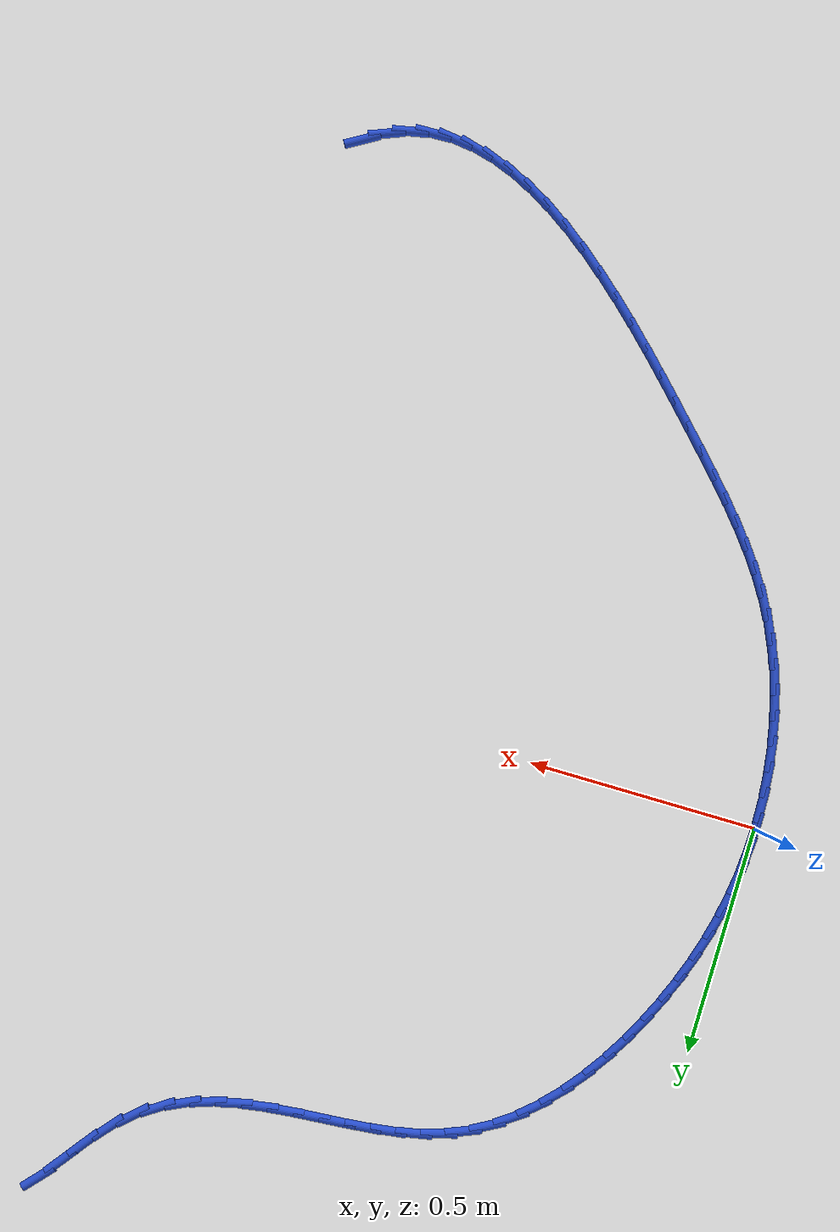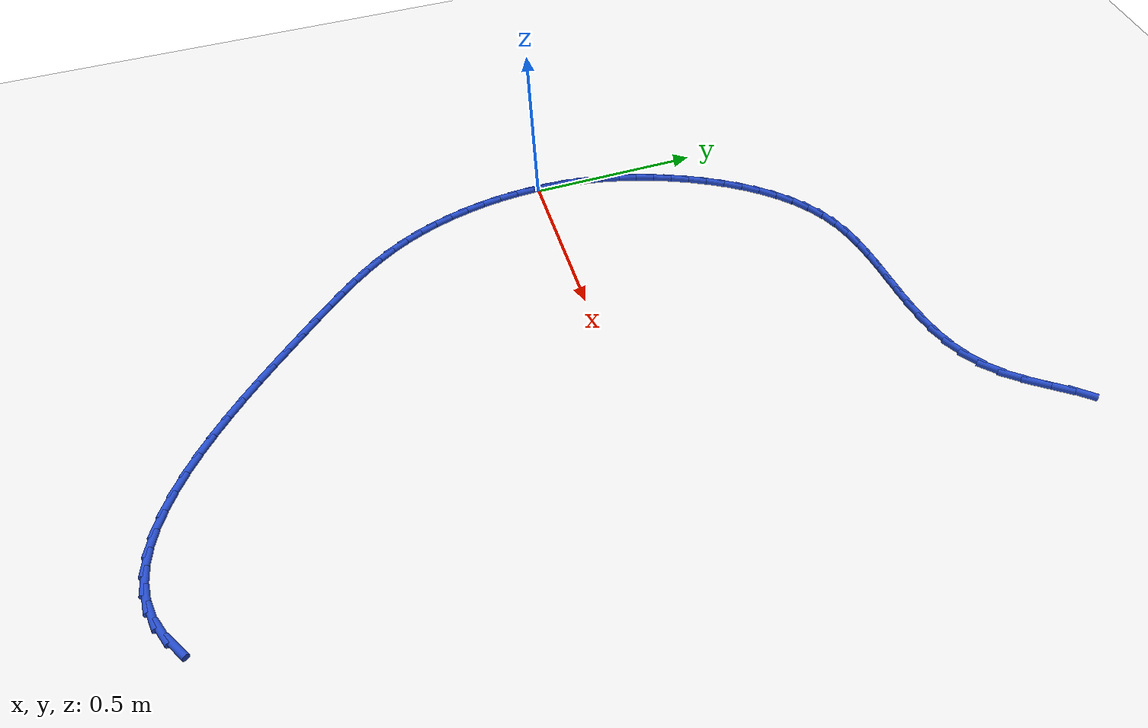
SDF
<sdf version="1.6">
 <world name="default">
  <model name="ground_plane">
   <static>1</static>
   <link name="link">
    <collision name="collision">
     <geometry><plane><normal>0 0 1</normal><size>100 100</size></plane></geometry>
     <surface><friction><ode><mu>100</mu><mu2>50</mu2></ode></friction></surface>
    </collision>
    <visual name="visual">
     <cast_shadows>0</cast_shadows>
     <geometry><plane><normal>0 0 1</normal><size>100 100</size></plane></geometry>
     <material>
      <script><uri>file://media/materials/scripts/gazebo.material</uri><name>Gazebo/WhiteGlow</name></script>
     </material>
    </visual>
   </link>
  </model>
  <model name="line">
   <link name="link_0">
    <pose>2.42861286636753e-17 1.3877787807814457e-17 0.01 0 1.57 1.5420624588516978</pose>
    <collision name="collision">
     <geometry><cylinder><radius>0.01</radius><length>0.08</length></cylinder></geometry>
    </collision>
    <visual name="visual">
     <material>
      <script><name>Gazebo/Blue</name><uri>file://media/materials/scripts/gazebo.material</uri></script>
     </material>
     <geometry><cylinder><radius>0.01</radius><length>0.08</length></cylinder></geometry>
    </visual>
   </link>
   <link name="link_1">
    <pose>0.0015752846020971303 0.054808181222139235 0.01 0 1.57 1.4864380276648332</pose>
    <collision name="collision">
     <geometry><cylinder><radius>0.01</radius><length>0.08</length></cylinder></geometry>
    </collision>
    <visual name="visual">
     <material>
      <script><name>Gazebo/Blue</name><uri>file://media/materials/scripts/gazebo.material</uri></script>
     </material>
     <geometry><cylinder><radius>0.01</radius><length>0.08</length></cylinder></geometry>
    </visual>
   </link>
   <link name="link_2">
    <pose>0.006167575423817304 0.10911691302079636 0.01 0 1.57 1.43100222677461</pose>
    <collision name="collision">
     <geometry><cylinder><radius>0.01</radius><length>0.08</length></cylinder></geometry>
    </collision>
    <visual name="visual">
     <material>
      <script><name>Gazebo/Blue</name><uri>file://media/materials/scripts/gazebo.material</uri></script>
     </material>
     <geometry><cylinder><radius>0.01</radius><length>0.08</length></cylinder></geometry>
    </visual>
   </link>
   <link name="link_3">
    <pose>0.01374115883125542 0.16294024106731586 0.01 0 1.57 1.3761278261949221</pose>
    <collision name="collision">
     <geometry><cylinder><radius>0.01</radius><length>0.08</length></cylinder></geometry>
    </collision>
    <visual name="visual">
     <material>
      <script><name>Gazebo/Blue</name><uri>file://media/materials/scripts/gazebo.material</uri></script>
     </material>
     <geometry><cylinder><radius>0.01</radius><length>0.08</length></cylinder></geometry>
    </visual>
   </link>
   <link name="link_4">
    <pose>0.024260321190506334 0.21629221103304203 0.01 0 1.57 1.3221669012426487</pose>
    <collision name="collision">
     <geometry><cylinder><radius>0.01</radius><length>0.08</length></cylinder></geometry>
    </collision>
    <visual name="visual">
     <material>
      <script><name>Gazebo/Blue</name><uri>file://media/materials/scripts/gazebo.material</uri></script>
     </material>
     <geometry><cylinder><radius>0.01</radius><length>0.08</length></cylinder></geometry>
    </visual>
   </link>
   <link name="link_5">
    <pose>0.03768934886766492 0.26918686858931923 0.01 0 1.57 1.2694385844756824</pose>
    <collision name="collision">
     <geometry><cylinder><radius>0.01</radius><length>0.08</length></cylinder></geometry>
    </collision>
    <visual name="visual">
     <material>
      <script><name>Gazebo/Blue</name><uri>file://media/materials/scripts/gazebo.material</uri></script>
     </material>
     <geometry><cylinder><radius>0.01</radius><length>0.08</length></cylinder></geometry>
    </visual>
   </link>
   <link name="link_6">
    <pose>0.05399252822882604 0.32163825940749213 0.01 0 1.57 1.2182197417365341</pose>
    <collision name="collision">
     <geometry><cylinder><radius>0.01</radius><length>0.08</length></cylinder></geometry>
    </collision>
    <visual name="visual">
     <material>
      <script><name>Gazebo/Blue</name><uri>file://media/materials/scripts/gazebo.material</uri></script>
     </material>
     <geometry><cylinder><radius>0.01</radius><length>0.08</length></cylinder></geometry>
    </visual>
   </link>
   <link name="link_7">
    <pose>0.07313414564008455 0.3736604291589047 0.01 0 1.57 1.1687390947016263</pose>
    <collision name="collision">
     <geometry><cylinder><radius>0.01</radius><length>0.08</length></cylinder></geometry>
    </collision>
    <visual name="visual">
     <material>
      <script><name>Gazebo/Blue</name><uri>file://media/materials/scripts/gazebo.material</uri></script>
     </material>
     <geometry><cylinder><radius>0.01</radius><length>0.08</length></cylinder></geometry>
    </visual>
   </link>
   <link name="link_8">
    <pose>0.09507848746753535 0.42526742351490165 0.01 0 1.57 1.1206531839875287</pose>
    <collision name="collision">
     <geometry><cylinder><radius>0.01</radius><length>0.08</length></cylinder></geometry>
    </collision>
    <visual name="visual">
     <material>
      <script><name>Gazebo/Blue</name><uri>file://media/materials/scripts/gazebo.material</uri></script>
     </material>
     <geometry><cylinder><radius>0.01</radius><length>0.08</length></cylinder></geometry>
    </visual>
   </link>
   <link name="link_9">
    <pose>0.11979248727167095 0.4764105993432065 0.01 0 1.57 1.0702290029019654</pose>
    <collision name="collision">
     <geometry><cylinder><radius>0.01</radius><length>0.08</length></cylinder></geometry>
    </collision>
    <visual name="visual">
     <material>
      <script><name>Gazebo/Blue</name><uri>file://media/materials/scripts/gazebo.material</uri></script>
     </material>
     <geometry><cylinder><radius>0.01</radius><length>0.08</length></cylinder></geometry>
    </visual>
   </link>
   <link name="link_10">
    <pose>0.14726073606709572 0.5266231633846747 0.01 0 1.57 1.0149843644139154</pose>
    <collision name="collision">
     <geometry><cylinder><radius>0.01</radius><length>0.08</length></cylinder></geometry>
    </collision>
    <visual name="visual">
     <material>
      <script><name>Gazebo/Blue</name><uri>file://media/materials/scripts/gazebo.material</uri></script>
     </material>
     <geometry><cylinder><radius>0.01</radius><length>0.08</length></cylinder></geometry>
    </visual>
   </link>
   <link name="link_11">
    <pose>0.17747504987871773 0.5752672252924358 0.01 0 1.57 0.953650546992467</pose>
    <collision name="collision">
     <geometry><cylinder><radius>0.01</radius><length>0.08</length></cylinder></geometry>
    </collision>
    <visual name="visual">
     <material>
      <script><name>Gazebo/Blue</name><uri>file://media/materials/scripts/gazebo.material</uri></script>
     </material>
     <geometry><cylinder><radius>0.01</radius><length>0.08</length></cylinder></geometry>
    </visual>
   </link>
   <link name="link_12">
    <pose>0.21042726639922063 0.6217043816001717 0.01 0 1.57 0.884848366604672</pose>
    <collision name="collision">
     <geometry><cylinder><radius>0.01</radius><length>0.08</length></cylinder></geometry>
    </collision>
    <visual name="visual">
     <material>
      <script><name>Gazebo/Blue</name><uri>file://media/materials/scripts/gazebo.material</uri></script>
     </material>
     <geometry><cylinder><radius>0.01</radius><length>0.08</length></cylinder></geometry>
    </visual>
   </link>
   <link name="link_13">
    <pose>0.2461092233212879 0.6652962288415646 0.01 0 1.57 0.8071061710454825</pose>
    <collision name="collision">
     <geometry><cylinder><radius>0.01</radius><length>0.08</length></cylinder></geometry>
    </collision>
    <visual name="visual">
     <material>
      <script><name>Gazebo/Blue</name><uri>file://media/materials/scripts/gazebo.material</uri></script>
     </material>
     <geometry><cylinder><radius>0.01</radius><length>0.08</length></cylinder></geometry>
    </visual>
   </link>
   <link name="link_14">
    <pose>0.2845127583376033 0.7054043635502972 0.01 0 1.57 0.7189496441462482</pose>
    <collision name="collision">
     <geometry><cylinder><radius>0.01</radius><length>0.08</length></cylinder></geometry>
    </collision>
    <visual name="visual">
     <material>
      <script><name>Gazebo/Blue</name><uri>file://media/materials/scripts/gazebo.material</uri></script>
     </material>
     <geometry><cylinder><radius>0.01</radius><length>0.08</length></cylinder></geometry>
    </visual>
   </link>
   <link name="link_15">
    <pose>0.3256297091408505 0.7413903822600517 0.01 0 1.57 0.6190990299214362</pose>
    <collision name="collision">
     <geometry><cylinder><radius>0.01</radius><length>0.08</length></cylinder></geometry>
    </collision>
    <visual name="visual">
     <material>
      <script><name>Gazebo/Blue</name><uri>file://media/materials/scripts/gazebo.material</uri></script>
     </material>
     <geometry><cylinder><radius>0.01</radius><length>0.08</length></cylinder></geometry>
    </visual>
   </link>
   <link name="link_16">
    <pose>0.36945191342371314 0.7726158815045103 0.01 0 1.57 0.5068113766488609</pose>
    <collision name="collision">
     <geometry><cylinder><radius>0.01</radius><length>0.08</length></cylinder></geometry>
    </collision>
    <visual name="visual">
     <material>
      <script><name>Gazebo/Blue</name><uri>file://media/materials/scripts/gazebo.material</uri></script>
     </material>
     <geometry><cylinder><radius>0.01</radius><length>0.08</length></cylinder></geometry>
    </visual>
   </link>
   <link name="link_17">
    <pose>0.41597120887887473 0.7984424578173552 0.01 0 1.57 0.3843534324642805</pose>
    <collision name="collision">
     <geometry><cylinder><radius>0.01</radius><length>0.08</length></cylinder></geometry>
    </collision>
    <visual name="visual">
     <material>
      <script><name>Gazebo/Blue</name><uri>file://media/materials/scripts/gazebo.material</uri></script>
     </material>
     <geometry><cylinder><radius>0.01</radius><length>0.08</length></cylinder></geometry>
    </visual>
   </link>
   <link name="link_18">
    <pose>0.4651529781041939 0.8183349826380478 0.01 0 1.57 0.27401545991121457</pose>
    <collision name="collision">
     <geometry><cylinder><radius>0.01</radius><length>0.08</length></cylinder></geometry>
    </collision>
    <visual name="visual">
     <material>
      <script><name>Gazebo/Blue</name><uri>file://media/materials/scripts/gazebo.material</uri></script>
     </material>
     <geometry><cylinder><radius>0.01</radius><length>0.08</length></cylinder></geometry>
    </visual>
   </link>
   <link name="link_19">
    <pose>0.5166902855572811 0.8328213978830915 0.01 0 1.57 0.18926324430584604</pose>
    <collision name="collision">
     <geometry><cylinder><radius>0.01</radius><length>0.08</length></cylinder></geometry>
    </collision>
    <visual name="visual">
     <material>
      <script><name>Gazebo/Blue</name><uri>file://media/materials/scripts/gazebo.material</uri></script>
     </material>
     <geometry><cylinder><radius>0.01</radius><length>0.08</length></cylinder></geometry>
    </visual>
   </link>
   <link name="link_20">
    <pose>0.5701159032129353 0.8430553922738603 0.01 0 1.57 0.1295169135766608</pose>
    <collision name="collision">
     <geometry><cylinder><radius>0.01</radius><length>0.08</length></cylinder></geometry>
    </collision>
    <visual name="visual">
     <material>
      <script><name>Gazebo/Blue</name><uri>file://media/materials/scripts/gazebo.material</uri></script>
     </material>
     <geometry><cylinder><radius>0.01</radius><length>0.08</length></cylinder></geometry>
    </visual>
   </link>
   <link name="link_21">
    <pose>0.624960545223401 0.850198687821038 0.01 0 1.57 0.0931853184821633</pose>
    <collision name="collision">
     <geometry><cylinder><radius>0.01</radius><length>0.08</length></cylinder></geometry>
    </collision>
    <visual name="visual">
     <material>
      <script><name>Gazebo/Blue</name><uri>file://media/materials/scripts/gazebo.material</uri></script>
     </material>
     <geometry><cylinder><radius>0.01</radius><length>0.08</length></cylinder></geometry>
    </visual>
   </link>
   <link name="link_22">
    <pose>0.6807549257409228 0.8554130065353077 0.01 0 1.57 0.07886014349723709</pose>
    <collision name="collision">
     <geometry><cylinder><radius>0.01</radius><length>0.08</length></cylinder></geometry>
    </collision>
    <visual name="visual">
     <material>
      <script><name>Gazebo/Blue</name><uri>file://media/materials/scripts/gazebo.material</uri></script>
     </material>
     <geometry><cylinder><radius>0.01</radius><length>0.08</length></cylinder></geometry>
    </visual>
   </link>
   <link name="link_23">
    <pose>0.7370297589177452 0.8598600704273529 0.01 0 1.57 0.08580540829288871</pose>
    <collision name="collision">
     <geometry><cylinder><radius>0.01</radius><length>0.08</length></cylinder></geometry>
    </collision>
    <visual name="visual">
     <material>
      <script><name>Gazebo/Blue</name><uri>file://media/materials/scripts/gazebo.material</uri></script>
     </material>
     <geometry><cylinder><radius>0.01</radius><length>0.08</length></cylinder></geometry>
    </visual>
   </link>
   <link name="link_24">
    <pose>0.7933157589061129 0.8647016015078569 0.01 0 1.57 0.11409949158228143</pose>
    <collision name="collision">
     <geometry><cylinder><radius>0.01</radius><length>0.08</length></cylinder></geometry>
    </collision>
    <visual name="visual">
     <material>
      <script><name>Gazebo/Blue</name><uri>file://media/materials/scripts/gazebo.material</uri></script>
     </material>
     <geometry><cylinder><radius>0.01</radius><length>0.08</length></cylinder></geometry>
    </visual>
   </link>
   <link name="link_25">
    <pose>0.8491436398582705 0.8710993217875033 0.01 0 1.57 0.16453811369930088</pose>
    <collision name="collision">
     <geometry><cylinder><radius>0.01</radius><length>0.08</length></cylinder></geometry>
    </collision>
    <visual name="visual">
     <material>
      <script><name>Gazebo/Blue</name><uri>file://media/materials/scripts/gazebo.material</uri></script>
     </material>
     <geometry><cylinder><radius>0.01</radius><length>0.08</length></cylinder></geometry>
    </visual>
   </link>
   <link name="link_26">
    <pose>0.904044115926462 0.880214953276975 0.01 0 1.57 0.23827102497982827</pose>
    <collision name="collision">
     <geometry><cylinder><radius>0.01</radius><length>0.08</length></cylinder></geometry>
    </collision>
    <visual name="visual">
     <material>
      <script><name>Gazebo/Blue</name><uri>file://media/materials/scripts/gazebo.material</uri></script>
     </material>
     <geometry><cylinder><radius>0.01</radius><length>0.08</length></cylinder></geometry>
    </visual>
   </link>
   <link name="link_27">
    <pose>0.9575479012629324 0.8932102179869557 0.01 0 1.57 0.33604302087828597</pose>
    <collision name="collision">
     <geometry><cylinder><radius>0.01</radius><length>0.08</length></cylinder></geometry>
    </collision>
    <visual name="visual">
     <material>
      <script><name>Gazebo/Blue</name><uri>file://media/materials/scripts/gazebo.material</uri></script>
     </material>
     <geometry><cylinder><radius>0.01</radius><length>0.08</length></cylinder></geometry>
    </visual>
   </link>
   <link name="link_28">
    <pose>1.0091857100199264 0.9112468379281284 0.01 0 1.57 0.4569469614177471</pose>
    <collision name="collision">
     <geometry><cylinder><radius>0.01</radius><length>0.08</length></cylinder></geometry>
    </collision>
    <visual name="visual">
     <material>
      <script><name>Gazebo/Blue</name><uri>file://media/materials/scripts/gazebo.material</uri></script>
     </material>
     <geometry><cylinder><radius>0.01</radius><length>0.08</length></cylinder></geometry>
    </visual>
   </link>
   <link name="link_29">
    <pose>1.0584882563496882 0.9354865351111767 0.01 0 1.57 0.5969686504758093</pose>
    <collision name="collision">
     <geometry><cylinder><radius>0.01</radius><length>0.08</length></cylinder></geometry>
    </collision>
    <visual name="visual">
     <material>
      <script><name>Gazebo/Blue</name><uri>file://media/materials/scripts/gazebo.material</uri></script>
     </material>
     <geometry><cylinder><radius>0.01</radius><length>0.08</length></cylinder></geometry>
    </visual>
   </link>
   <link name="link_30">
    <pose>1.1049862544044626 0.9670910315467844 0.01 0 1.57 0.7478115857028584</pose>
    <collision name="collision">
     <geometry><cylinder><radius>0.01</radius><length>0.08</length></cylinder></geometry>
    </collision>
    <visual name="visual">
     <material>
      <script><name>Gazebo/Blue</name><uri>file://media/materials/scripts/gazebo.material</uri></script>
     </material>
     <geometry><cylinder><radius>0.01</radius><length>0.08</length></cylinder></geometry>
    </visual>
   </link>
   <link name="link_31">
    <pose>1.14821746689511 1.007188720057224 0.01 0 1.57 0.870567117872888</pose>
    <collision name="collision">
     <geometry><cylinder><radius>0.01</radius><length>0.08</length></cylinder></geometry>
    </collision>
    <visual name="visual">
     <material>
      <script><name>Gazebo/Blue</name><uri>file://media/materials/scripts/gazebo.material</uri></script>
     </material>
     <geometry><cylinder><radius>0.01</radius><length>0.08</length></cylinder></geometry>
    </visual>
   </link>
   <link name="link_32">
    <pose>1.1882001866343026 1.0546358014928792 0.01 0 1.57 0.9265381492743721</pose>
    <collision name="collision">
     <geometry><cylinder><radius>0.01</radius><length>0.08</length></cylinder></geometry>
    </collision>
    <visual name="visual">
     <material>
      <script><name>Gazebo/Blue</name><uri>file://media/materials/scripts/gazebo.material</uri></script>
     </material>
     <geometry><cylinder><radius>0.01</radius><length>0.08</length></cylinder></geometry>
    </visual>
   </link>
   <link name="link_33">
    <pose>1.2257326943667566 1.1046002950258593 0.01 0 1.57 0.9209991003880702</pose>
    <collision name="collision">
     <geometry><cylinder><radius>0.01</radius><length>0.08</length></cylinder></geometry>
    </collision>
    <visual name="visual">
     <material>
      <script><name>Gazebo/Blue</name><uri>file://media/materials/scripts/gazebo.material</uri></script>
     </material>
     <geometry><cylinder><radius>0.01</radius><length>0.08</length></cylinder></geometry>
    </visual>
   </link>
   <link name="link_34">
    <pose>1.261684651981534 1.1519126932872454 0.01 0 1.57 0.8422033054999151</pose>
    <collision name="collision">
     <geometry><cylinder><radius>0.01</radius><length>0.08</length></cylinder></geometry>
    </collision>
    <visual name="visual">
     <material>
      <script><name>Gazebo/Blue</name><uri>file://media/materials/scripts/gazebo.material</uri></script>
     </material>
     <geometry><cylinder><radius>0.01</radius><length>0.08</length></cylinder></geometry>
    </visual>
   </link>
   <link name="link_106">
    <pose>1.2283389478792905 -1.1805866907712537 0.01 0 1.57 0.5368214430394034</pose>
    <collision name="collision">
     <geometry><cylinder><radius>0.01</radius><length>0.08</length></cylinder></geometry>
    </collision>
    <visual name="visual">
     <material>
      <script><name>Gazebo/Blue</name><uri>file://media/materials/scripts/gazebo.material</uri></script>
     </material>
     <geometry><cylinder><radius>0.01</radius><length>0.08</length></cylinder></geometry>
    </visual>
   </link>
   <link name="link_107">
    <pose>1.181948491728032 -1.2081944473952826 0.01 0 1.57 0.3758071325182721</pose>
    <collision name="collision">
     <geometry><cylinder><radius>0.01</radius><length>0.08</length></cylinder></geometry>
    </collision>
    <visual name="visual">
     <material>
      <script><name>Gazebo/Blue</name><uri>file://media/materials/scripts/gazebo.material</uri></script>
     </material>
     <geometry><cylinder><radius>0.01</radius><length>0.08</length></cylinder></geometry>
    </visual>
   </link>
   <link name="link_108">
    <pose>1.1345788776668382 -1.2268845579593644 0.01 0 1.57 0.19946547344628981</pose>
    <collision name="collision">
     <geometry><cylinder><radius>0.01</radius><length>0.08</length></cylinder></geometry>
    </collision>
    <visual name="visual">
     <material>
      <script><name>Gazebo/Blue</name><uri>file://media/materials/scripts/gazebo.material</uri></script>
     </material>
     <geometry><cylinder><radius>0.01</radius><length>0.08</length></cylinder></geometry>
    </visual>
   </link>
   <link name="link_109">
    <pose>1.0862911295388369 -1.2366461003097218 0.01 0 1.57 0.03063872361794845</pose>
    <collision name="collision">
     <geometry><cylinder><radius>0.01</radius><length>0.08</length></cylinder></geometry>
    </collision>
    <visual name="visual">
     <material>
      <script><name>Gazebo/Blue</name><uri>file://media/materials/scripts/gazebo.material</uri></script>
     </material>
     <geometry><cylinder><radius>0.01</radius><length>0.08</length></cylinder></geometry>
    </visual>
   </link>
   <link name="link_110">
    <pose>1.0372479256873433 -1.2381491918403682 0.01 0 1.57 -0.12198865534891509</pose>
    <collision name="collision">
     <geometry><cylinder><radius>0.01</radius><length>0.08</length></cylinder></geometry>
    </collision>
    <visual name="visual">
     <material>
      <script><name>Gazebo/Blue</name><uri>file://media/materials/scripts/gazebo.material</uri></script>
     </material>
     <geometry><cylinder><radius>0.01</radius><length>0.08</length></cylinder></geometry>
    </visual>
   </link>
   <link name="link_111">
    <pose>0.9876119444556687 -1.2320639499453174 0.01 0 1.57 -0.2541113004921439</pose>
    <collision name="collision">
     <geometry><cylinder><radius>0.01</radius><length>0.08</length></cylinder></geometry>
    </collision>
    <visual name="visual">
     <material>
      <script><name>Gazebo/Blue</name><uri>file://media/materials/scripts/gazebo.material</uri></script>
     </material>
     <geometry><cylinder><radius>0.01</radius><length>0.08</length></cylinder></geometry>
    </visual>
   </link>
   <link name="link_112">
    <pose>0.9375458641871273 -1.2190604920185837 0.01 0 1.57 -0.36531228260544407</pose>
    <collision name="collision">
     <geometry><cylinder><radius>0.01</radius><length>0.08</length></cylinder></geometry>
    </collision>
    <visual name="visual">
     <material>
      <script><name>Gazebo/Blue</name><uri>file://media/materials/scripts/gazebo.material</uri></script>
     </material>
     <geometry><cylinder><radius>0.01</radius><length>0.08</length></cylinder></geometry>
    </visual>
   </link>
   <link name="link_113">
    <pose>0.8872123632250308 -1.1998089354541805 0.01 0 1.57 -0.4574493561994801</pose>
    <collision name="collision">
     <geometry><cylinder><radius>0.01</radius><length>0.08</length></cylinder></geometry>
    </collision>
    <visual name="visual">
     <material>
      <script><name>Gazebo/Blue</name><uri>file://media/materials/scripts/gazebo.material</uri></script>
     </material>
     <geometry><cylinder><radius>0.01</radius><length>0.08</length></cylinder></geometry>
    </visual>
   </link>
   <link name="link_114">
    <pose>0.8367741199126939 -1.1749793976461214 0.01 0 1.57 -0.5332257961167922</pose>
    <collision name="collision">
     <geometry><cylinder><radius>0.01</radius><length>0.08</length></cylinder></geometry>
    </collision>
    <visual name="visual">
     <material>
      <script><name>Gazebo/Blue</name><uri>file://media/materials/scripts/gazebo.material</uri></script>
     </material>
     <geometry><cylinder><radius>0.01</radius><length>0.08</length></cylinder></geometry>
    </visual>
   </link>
   <link name="link_115">
    <pose>0.7863938125934291 -1.145241995988421 0.01 0 1.57 -0.5953552292238156</pose>
    <collision name="collision">
     <geometry><cylinder><radius>0.01</radius><length>0.08</length></cylinder></geometry>
    </collision>
    <visual name="visual">
     <material>
      <script><name>Gazebo/Blue</name><uri>file://media/materials/scripts/gazebo.material</uri></script>
     </material>
     <geometry><cylinder><radius>0.01</radius><length>0.08</length></cylinder></geometry>
    </visual>
   </link>
   <link name="link_116">
    <pose>0.7362341196105496 -1.111266847875092 0.01 0 1.57 -0.6462018277554729</pose>
    <collision name="collision">
     <geometry><cylinder><radius>0.01</radius><length>0.08</length></cylinder></geometry>
    </collision>
    <visual name="visual">
     <material>
      <script><name>Gazebo/Blue</name><uri>file://media/materials/scripts/gazebo.material</uri></script>
     </material>
     <geometry><cylinder><radius>0.01</radius><length>0.08</length></cylinder></geometry>
    </visual>
   </link>
   <link name="link_117">
    <pose>0.6864577193073675 -1.0737240707001483 0.01 0 1.57 -0.6876834774751353</pose>
    <collision name="collision">
     <geometry><cylinder><radius>0.01</radius><length>0.08</length></cylinder></geometry>
    </collision>
    <visual name="visual">
     <material>
      <script><name>Gazebo/Blue</name><uri>file://media/materials/scripts/gazebo.material</uri></script>
     </material>
     <geometry><cylinder><radius>0.01</radius><length>0.08</length></cylinder></geometry>
    </visual>
   </link>
   <link name="link_118">
    <pose>0.6372272900271974 -1.0332837818576042 0.01 0 1.57 -0.7212890619989076</pose>
    <collision name="collision">
     <geometry><cylinder><radius>0.01</radius><length>0.08</length></cylinder></geometry>
    </collision>
    <visual name="visual">
     <material>
      <script><name>Gazebo/Blue</name><uri>file://media/materials/scripts/gazebo.material</uri></script>
     </material>
     <geometry><cylinder><radius>0.01</radius><length>0.08</length></cylinder></geometry>
    </visual>
   </link>
   <link name="link_119">
    <pose>0.5887055101133516 -0.9906160987414737 0.01 0 1.57 -0.7481313236049429</pose>
    <collision name="collision">
     <geometry><cylinder><radius>0.01</radius><length>0.08</length></cylinder></geometry>
    </collision>
    <visual name="visual">
     <material>
      <script><name>Gazebo/Blue</name><uri>file://media/materials/scripts/gazebo.material</uri></script>
     </material>
     <geometry><cylinder><radius>0.01</radius><length>0.08</length></cylinder></geometry>
    </visual>
   </link>
   <link name="link_120">
    <pose>0.5410550579091434 -0.9463911387457697 0.01 0 1.57 -0.7689998711382078</pose>
    <collision name="collision">
     <geometry><cylinder><radius>0.01</radius><length>0.08</length></cylinder></geometry>
    </collision>
    <visual name="visual">
     <material>
      <script><name>Gazebo/Blue</name><uri>file://media/materials/scripts/gazebo.material</uri></script>
     </material>
     <geometry><cylinder><radius>0.01</radius><length>0.08</length></cylinder></geometry>
    </visual>
   </link>
   <link name="link_121">
    <pose>0.49443861175788584 -0.9012790192645066 0.01 0 1.57 -0.784399802769446</pose>
    <collision name="collision">
     <geometry><cylinder><radius>0.01</radius><length>0.08</length></cylinder></geometry>
    </collision>
    <visual name="visual">
     <material>
      <script><name>Gazebo/Blue</name><uri>file://media/materials/scripts/gazebo.material</uri></script>
     </material>
     <geometry><cylinder><radius>0.01</radius><length>0.08</length></cylinder></geometry>
    </visual>
   </link>
   <link name="link_122">
    <pose>0.4490188500028911 -0.8559498576916971 0.01 0 1.57 -0.7945694768601932</pose>
    <collision name="collision">
     <geometry><cylinder><radius>0.01</radius><length>0.08</length></cylinder></geometry>
    </collision>
    <visual name="visual">
     <material>
      <script><name>Gazebo/Blue</name><uri>file://media/materials/scripts/gazebo.material</uri></script>
     </material>
     <geometry><cylinder><radius>0.01</radius><length>0.08</length></cylinder></geometry>
    </visual>
   </link>
   <link name="link_123">
    <pose>0.4049584509874741 -0.8110737714213565 0.01 0 1.57 -0.7995545535776921</pose>
    <collision name="collision">
     <geometry><cylinder><radius>0.01</radius><length>0.08</length></cylinder></geometry>
    </collision>
    <visual name="visual">
     <material>
      <script><name>Gazebo/Blue</name><uri>file://media/materials/scripts/gazebo.material</uri></script>
     </material>
     <geometry><cylinder><radius>0.01</radius><length>0.08</length></cylinder></geometry>
    </visual>
   </link>
   <link name="link_124">
    <pose>0.3624200027643242 -0.7673135641429227 0.01 0 1.57 -0.8040630930343449</pose>
    <collision name="collision">
     <geometry><cylinder><radius>0.01</radius><length>0.08</length></cylinder></geometry>
    </collision>
    <visual name="visual">
     <material>
      <script><name>Gazebo/Blue</name><uri>file://media/materials/scripts/gazebo.material</uri></script>
     </material>
     <geometry><cylinder><radius>0.01</radius><length>0.08</length></cylinder></geometry>
    </visual>
   </link>
   <link name="link_125">
    <pose>0.32156075789327293 -0.7248998549243851 0.01 0 1.57 -0.8160797458655416</pose>
    <collision name="collision">
     <geometry><cylinder><radius>0.01</radius><length>0.08</length></cylinder></geometry>
    </collision>
    <visual name="visual">
     <material>
      <script><name>Gazebo/Blue</name><uri>file://media/materials/scripts/gazebo.material</uri></script>
     </material>
     <geometry><cylinder><radius>0.01</radius><length>0.08</length></cylinder></geometry>
    </visual>
   </link>
   <link name="link_126">
    <pose>0.282529745697302 -0.6833971656992374 0.01 0 1.57 -0.836921920277842</pose>
    <collision name="collision">
     <geometry><cylinder><radius>0.01</radius><length>0.08</length></cylinder></geometry>
    </collision>
    <visual name="visual">
     <material>
      <script><name>Gazebo/Blue</name><uri>file://media/materials/scripts/gazebo.material</uri></script>
     </material>
     <geometry><cylinder><radius>0.01</radius><length>0.08</length></cylinder></geometry>
    </visual>
   </link>
   <link name="link_127">
    <pose>0.24547529356324171 -0.6423131602964541 0.01 0 1.57 -0.8670707324574061</pose>
    <collision name="collision">
     <geometry><cylinder><radius>0.01</radius><length>0.08</length></cylinder></geometry>
    </collision>
    <visual name="visual">
     <material>
      <script><name>Gazebo/Blue</name><uri>file://media/materials/scripts/gazebo.material</uri></script>
     </material>
     <geometry><cylinder><radius>0.01</radius><length>0.08</length></cylinder></geometry>
    </visual>
   </link>
   <link name="link_128">
    <pose>0.21054572887792056 -0.6011555025450088 0.01 0 1.57 -0.9067046611781485</pose>
    <collision name="collision">
     <geometry><cylinder><radius>0.01</radius><length>0.08</length></cylinder></geometry>
    </collision>
    <visual name="visual">
     <material>
      <script><name>Gazebo/Blue</name><uri>file://media/materials/scripts/gazebo.material</uri></script>
     </material>
     <geometry><cylinder><radius>0.01</radius><length>0.08</length></cylinder></geometry>
    </visual>
   </link>
   <link name="link_129">
    <pose>0.17788937902816765 -0.5594318562738748 0.01 0 1.57 -0.9555755619991757</pose>
    <collision name="collision">
     <geometry><cylinder><radius>0.01</radius><length>0.08</length></cylinder></geometry>
    </collision>
    <visual name="visual">
     <material>
      <script><name>Gazebo/Blue</name><uri>file://media/materials/scripts/gazebo.material</uri></script>
     </material>
     <geometry><cylinder><radius>0.01</radius><length>0.08</length></cylinder></geometry>
    </visual>
   </link>
   <link name="link_130">
    <pose>0.14765457140081206 -0.5166498853120255 0.01 0 1.57 -1.0128941004056617</pose>
    <collision name="collision">
     <geometry><cylinder><radius>0.01</radius><length>0.08</length></cylinder></geometry>
    </collision>
    <visual name="visual">
     <material>
      <script><name>Gazebo/Blue</name><uri>file://media/materials/scripts/gazebo.material</uri></script>
     </material>
     <geometry><cylinder><radius>0.01</radius><length>0.08</length></cylinder></geometry>
    </visual>
   </link>
   <link name="link_131">
    <pose>0.11998963338268252 -0.47231725348843395 0.01 0 1.57 -1.077261138981261</pose>
    <collision name="collision">
     <geometry><cylinder><radius>0.01</radius><length>0.08</length></cylinder></geometry>
    </collision>
    <visual name="visual">
     <material>
      <script><name>Gazebo/Blue</name><uri>file://media/materials/scripts/gazebo.material</uri></script>
     </material>
     <geometry><cylinder><radius>0.01</radius><length>0.08</length></cylinder></geometry>
    </visual>
   </link>
   <link name="link_132">
    <pose>0.09504279603218801 -0.4259422974435999 0.01 0 1.57 -1.1444537857581092</pose>
    <collision name="collision">
     <geometry><cylinder><radius>0.01</radius><length>0.08</length></cylinder></geometry>
    </collision>
    <visual name="visual">
     <material>
      <script><name>Gazebo/Blue</name><uri>file://media/materials/scripts/gazebo.material</uri></script>
     </material>
     <geometry><cylinder><radius>0.01</radius><length>0.08</length></cylinder></geometry>
    </visual>
   </link>
   <link name="link_133">
    <pose>0.07293017018231704 -0.3772576994224191 0.01 0 1.57 -1.2081704735092884</pose>
    <collision name="collision">
     <geometry><cylinder><radius>0.01</radius><length>0.08</length></cylinder></geometry>
    </collision>
    <visual name="visual">
     <material>
      <script><name>Gazebo/Blue</name><uri>file://media/materials/scripts/gazebo.material</uri></script>
     </material>
     <geometry><cylinder><radius>0.01</radius><length>0.08</length></cylinder></geometry>
    </visual>
   </link>
   <link name="link_134">
    <pose>0.05368936692937379 -0.3265444276996003 0.01 0 1.57 -1.2683503491117765</pose>
    <collision name="collision">
     <geometry><cylinder><radius>0.01</radius><length>0.08</length></cylinder></geometry>
    </collision>
    <visual name="visual">
     <material>
      <script><name>Gazebo/Blue</name><uri>file://media/materials/scripts/gazebo.material</uri></script>
     </material>
     <geometry><cylinder><radius>0.01</radius><length>0.08</length></cylinder></geometry>
    </visual>
   </link>
   <link name="link_135">
    <pose>0.03734622873858665 -0.2741656492460658 0.01 0 1.57 -1.3258290405113398</pose>
    <collision name="collision">
     <geometry><cylinder><radius>0.01</radius><length>0.08</length></cylinder></geometry>
    </collision>
    <visual name="visual">
     <material>
      <script><name>Gazebo/Blue</name><uri>file://media/materials/scripts/gazebo.material</uri></script>
     </material>
     <geometry><cylinder><radius>0.01</radius><length>0.08</length></cylinder></geometry>
    </visual>
   </link>
   <link name="link_136">
    <pose>0.02392659807518479 -0.22048453103274104 0.01 0 1.57 -1.3814017026811876</pose>
    <collision name="collision">
     <geometry><cylinder><radius>0.01</radius><length>0.08</length></cylinder></geometry>
    </collision>
    <visual name="visual">
     <material>
      <script><name>Gazebo/Blue</name><uri>file://media/materials/scripts/gazebo.material</uri></script>
     </material>
     <geometry><cylinder><radius>0.01</radius><length>0.08</length></cylinder></geometry>
    </visual>
   </link>
   <link name="link_137">
    <pose>0.01345631740439656 -0.16586424003054867 0.01 0 1.57 -1.43583212151209</pose>
    <collision name="collision">
     <geometry><cylinder><radius>0.01</radius><length>0.08</length></cylinder></geometry>
    </collision>
    <visual name="visual">
     <material>
      <script><name>Gazebo/Blue</name><uri>file://media/materials/scripts/gazebo.material</uri></script>
     </material>
     <geometry><cylinder><radius>0.01</radius><length>0.08</length></cylinder></geometry>
    </visual>
   </link>
   <link name="link_138">
    <pose>0.005961229191450597 -0.11066794321041212 0.01 0 1.57 -1.489866755547265</pose>
    <collision name="collision">
     <geometry><cylinder><radius>0.01</radius><length>0.08</length></cylinder></geometry>
    </collision>
    <visual name="visual">
     <material>
      <script><name>Gazebo/Blue</name><uri>file://media/materials/scripts/gazebo.material</uri></script>
     </material>
     <geometry><cylinder><radius>0.01</radius><length>0.08</length></cylinder></geometry>
    </visual>
   </link>
   <link name="link_139">
    <pose>0.0014671759015755445 -0.055258807543255004 0.01 0 1.57 -1.544251575862938</pose>
    <collision name="collision">
     <geometry><cylinder><radius>0.01</radius><length>0.08</length></cylinder></geometry>
    </collision>
    <visual name="visual">
     <material>
      <script><name>Gazebo/Blue</name><uri>file://media/materials/scripts/gazebo.material</uri></script>
     </material>
     <geometry><cylinder><radius>0.01</radius><length>0.08</length></cylinder></geometry>
    </visual>
   </link>
   <link name="link_140">
    <pose>3.9898639947466563e-17 1.3877787807814457e-17 0.01 0 1.57 1.5418422340772644</pose>
    <collision name="collision">
     <geometry><cylinder><radius>0.01</radius><length>0.08</length></cylinder></geometry>
    </collision>
    <visual name="visual">
     <material>
      <script><name>Gazebo/Blue</name><uri>file://media/materials/scripts/gazebo.material</uri></script>
     </material>
     <geometry><cylinder><radius>0.01</radius><length>0.08</length></cylinder></geometry>
    </visual>
   </link>
   <link name="link_141">
    <pose>0.0015855439519527614 0.05474531244842768 0.01 0 1.57 1.5418422340772642</pose>
    <collision name="collision">
     <geometry><cylinder><radius>0.01</radius><length>0.08</length></cylinder></geometry>
    </collision>
    <visual name="visual">
     <material>
      <script><name>Gazebo/Blue</name><uri>file://media/materials/scripts/gazebo.material</uri></script>
     </material>
     <geometry><cylinder><radius>0.01</radius><length>0.08</length></cylinder></geometry>
    </visual>
   </link>
  </model>
 </world>
</sdf>
